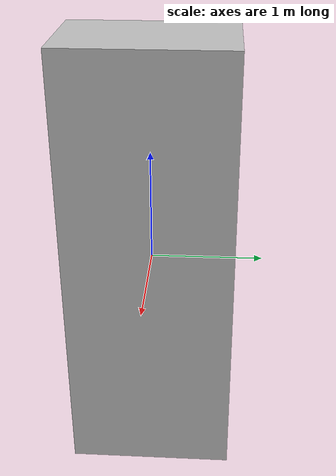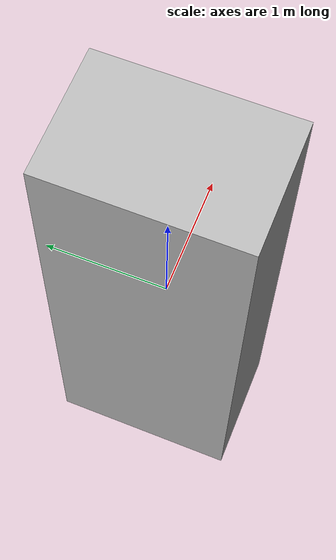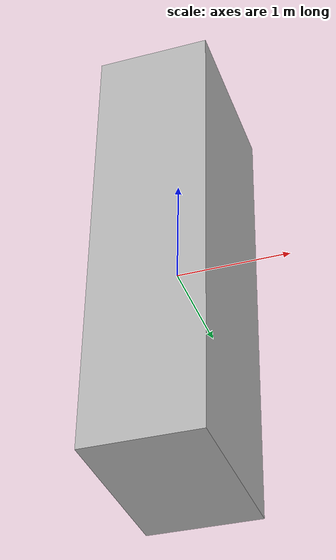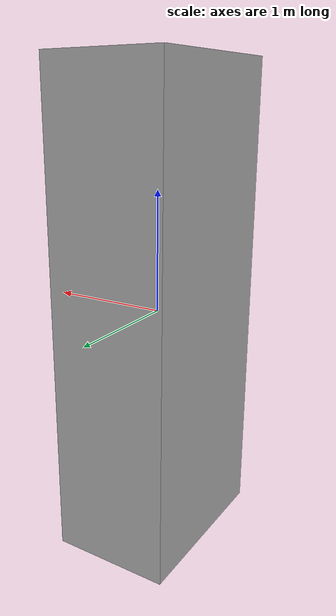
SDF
<sdf version="1.5">
  <model name="Cube">
    <static>true</static>
    <link name="link">
      <collision name="collision">
        <geometry>
          <box>
            <size>1.0 1.5 4.0</size>
          </box>
        </geometry>
      </collision>
      <visual name="visual">
        <geometry>
          <box>
            <size>1.0 1.5 4.0</size>
          </box>
        </geometry>
      </visual>
    </link>
  </model>
</sdf>
